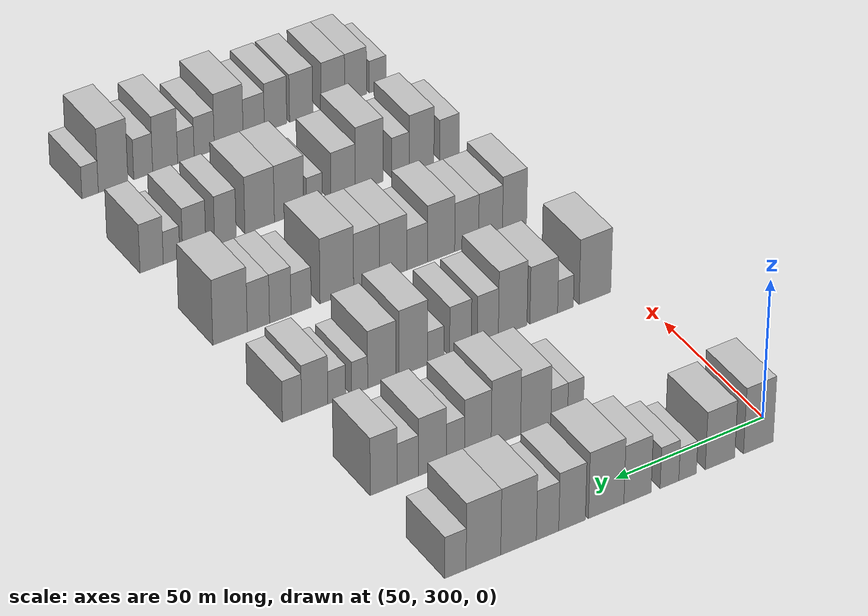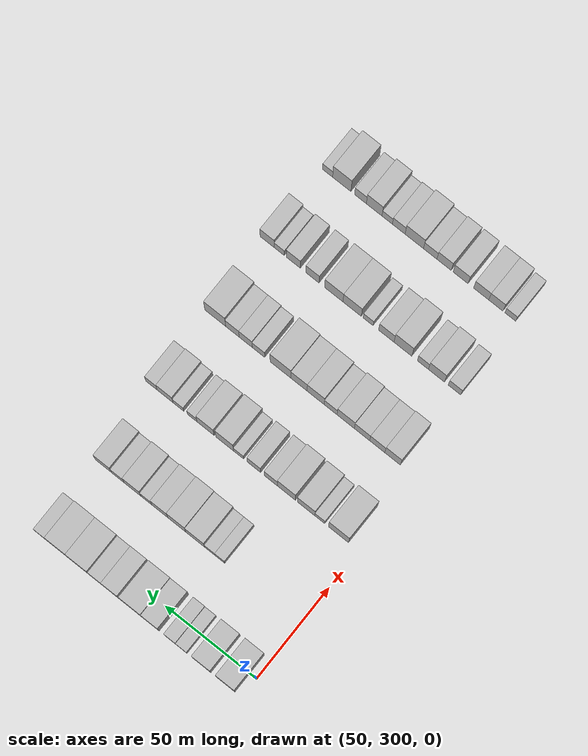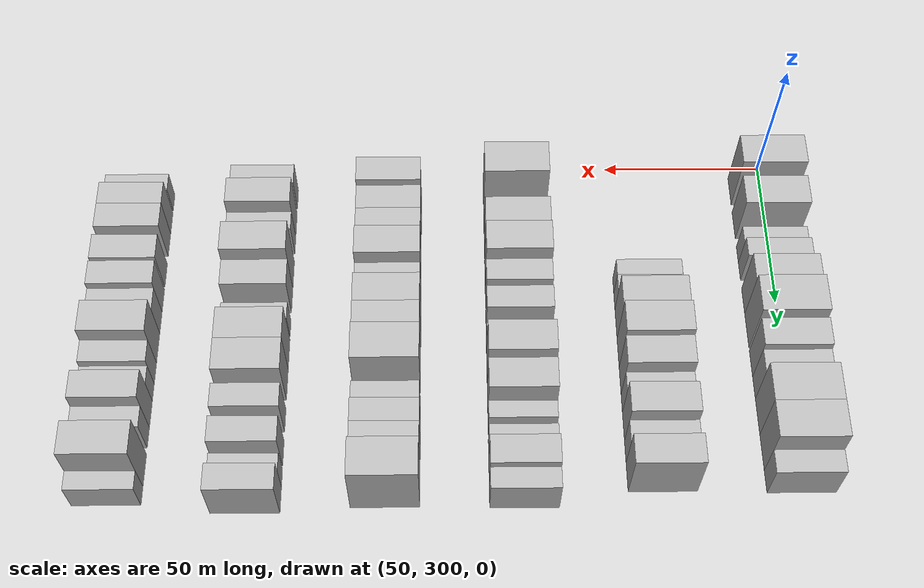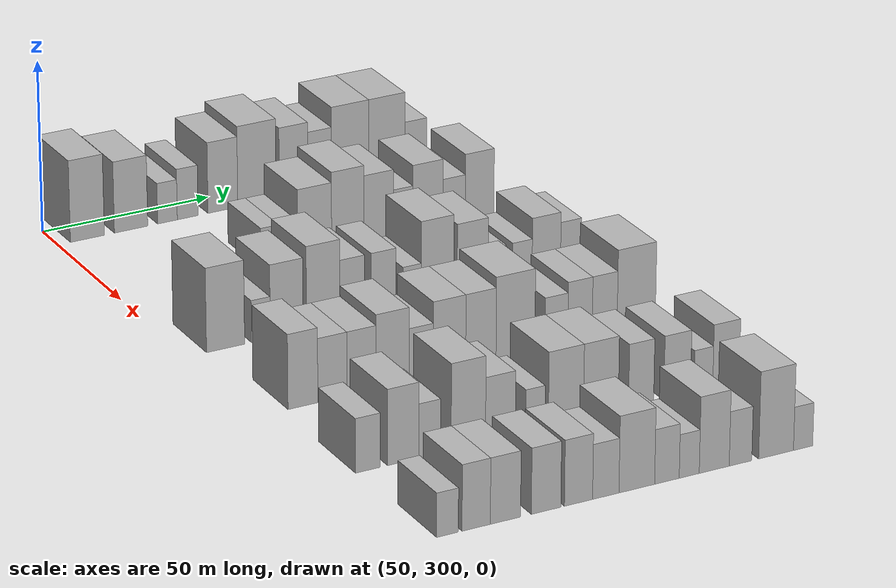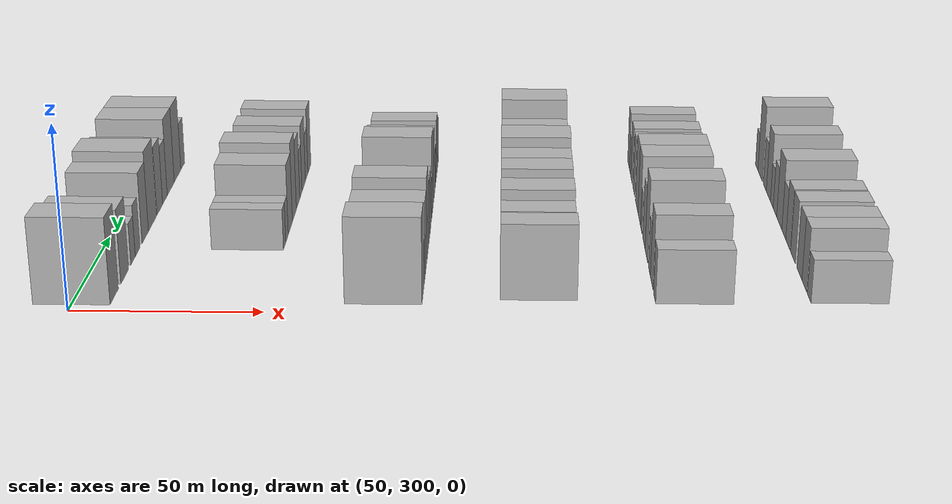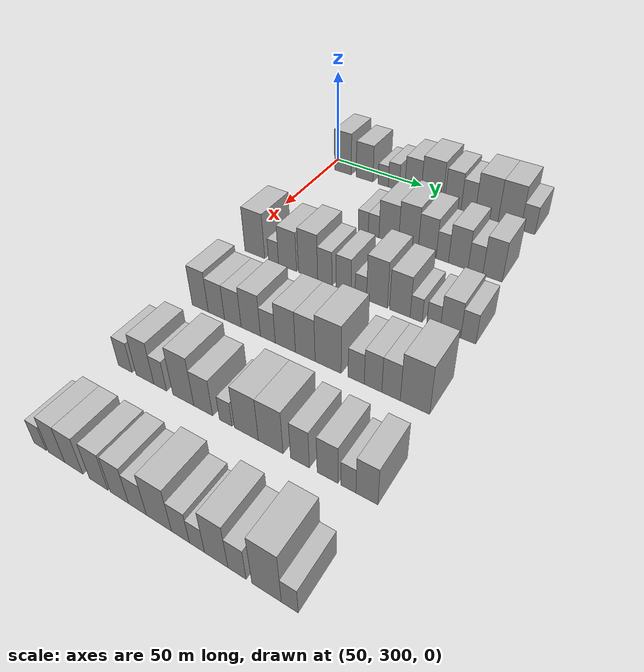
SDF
<sdf version="1.6">
 <world name="default">
  <model name="building_108">
   <static>1</static>
   <pose>50.0000 308.7284 0 0.000000 0.000000 0.000000</pose>
   <link name="link">
    <pose>0 0 12.00 0 0 0</pose>
    <collision name="collision"><geometry><box><size>20.0000 10.1392 24.0000</size></box></geometry></collision>
    <visual name="visual">
     <cast_shadows>0</cast_shadows>
     <geometry><box><size>20.0000 10.1392 24.0000</size></box></geometry>
     <material>
      <script>
       <uri>model://HANNAS_wall/materials/scripts</uri>
       <uri>model://HANNAS_wall/materials/textures</uri>
       <name>vrc/HANNAS_wall</name>
      </script>
     </material>
    </visual>
   </link>
  </model>
  <model name="building_109">
   <static>1</static>
   <pose>50.0000 321.8084 0 0.000000 0.000000 0.000000</pose>
   <link name="link">
    <pose>0 0 10.50 0 0 0</pose>
    <collision name="collision"><geometry><box><size>20.0000 10.0208 21.0000</size></box></geometry></collision>
    <visual name="visual">
     <cast_shadows>0</cast_shadows>
     <geometry><box><size>20.0000 10.0208 21.0000</size></box></geometry>
     <material>
      <script>
       <uri>model://HANNAS_wall/materials/scripts</uri>
       <uri>model://HANNAS_wall/materials/textures</uri>
       <name>vrc/HANNAS_wall</name>
      </script>
     </material>
    </visual>
   </link>
  </model>
  <model name="building_110">
   <static>1</static>
   <pose>50.0000 332.7910 0 0.000000 0.000000 0.000000</pose>
   <link name="link">
    <pose>0 0 6.00 0 0 0</pose>
    <collision name="collision"><geometry><box><size>20.0000 5.9444 12.0000</size></box></geometry></collision>
    <visual name="visual">
     <cast_shadows>0</cast_shadows>
     <geometry><box><size>20.0000 5.9444 12.0000</size></box></geometry>
     <material>
      <script>
       <uri>model://HANNAS_wall/materials/scripts</uri>
       <uri>model://HANNAS_wall/materials/textures</uri>
       <name>vrc/HANNAS_wall</name>
      </script>
     </material>
    </visual>
   </link>
  </model>
  <model name="building_111">
   <static>1</static>
   <pose>50.0000 338.9267 0 0.000000 0.000000 0.000000</pose>
   <link name="link">
    <pose>0 0 7.50 0 0 0</pose>
    <collision name="collision"><geometry><box><size>20.0000 6.3269 15.0000</size></box></geometry></collision>
    <visual name="visual">
     <cast_shadows>0</cast_shadows>
     <geometry><box><size>20.0000 6.3269 15.0000</size></box></geometry>
     <material>
      <script>
       <uri>model://HANNAS_wall/materials/scripts</uri>
       <uri>model://HANNAS_wall/materials/textures</uri>
       <name>vrc/HANNAS_wall</name>
      </script>
     </material>
    </visual>
   </link>
  </model>
  <model name="building_112">
   <static>1</static>
   <pose>50.0000 349.6469 0 0.000000 0.000000 0.000000</pose>
   <link name="link">
    <pose>0 0 10.50 0 0 0</pose>
    <collision name="collision"><geometry><box><size>20.0000 9.1135 21.0000</size></box></geometry></collision>
    <visual name="visual">
     <cast_shadows>0</cast_shadows>
     <geometry><box><size>20.0000 9.1135 21.0000</size></box></geometry>
     <material>
      <script>
       <uri>model://HANNAS_wall/materials/scripts</uri>
       <uri>model://HANNAS_wall/materials/textures</uri>
       <name>vrc/HANNAS_wall</name>
      </script>
     </material>
    </visual>
   </link>
  </model>
  <model name="building_113">
   <static>1</static>
   <pose>50.0000 360.1060 0 0.000000 0.000000 0.000000</pose>
   <link name="link">
    <pose>0 0 12.00 0 0 0</pose>
    <collision name="collision"><geometry><box><size>20.0000 11.8048 24.0000</size></box></geometry></collision>
    <visual name="visual">
     <cast_shadows>0</cast_shadows>
     <geometry><box><size>20.0000 11.8048 24.0000</size></box></geometry>
     <material>
      <script>
       <uri>model://HANNAS_wall/materials/scripts</uri>
       <uri>model://HANNAS_wall/materials/textures</uri>
       <name>vrc/HANNAS_wall</name>
      </script>
     </material>
    </visual>
   </link>
  </model>
  <model name="building_114">
   <static>1</static>
   <pose>50.0000 371.4158 0 0.000000 0.000000 0.000000</pose>
   <link name="link">
    <pose>0 0 10.50 0 0 0</pose>
    <collision name="collision"><geometry><box><size>20.0000 8.8148 21.0000</size></box></geometry></collision>
    <visual name="visual">
     <cast_shadows>0</cast_shadows>
     <geometry><box><size>20.0000 8.8148 21.0000</size></box></geometry>
     <material>
      <script>
       <uri>model://HANNAS_wall/materials/scripts</uri>
       <uri>model://HANNAS_wall/materials/textures</uri>
       <name>vrc/HANNAS_wall</name>
      </script>
     </material>
    </visual>
   </link>
  </model>
  <model name="building_115">
   <static>1</static>
   <pose>50.0000 379.5084 0 0.000000 0.000000 0.000000</pose>
   <link name="link">
    <pose>0 0 9.00 0 0 0</pose>
    <collision name="collision"><geometry><box><size>20.0000 7.3705 18.0000</size></box></geometry></collision>
    <visual name="visual">
     <cast_shadows>0</cast_shadows>
     <geometry><box><size>20.0000 7.3705 18.0000</size></box></geometry>
     <material>
      <script>
       <uri>model://HANNAS_wall/materials/scripts</uri>
       <uri>model://HANNAS_wall/materials/textures</uri>
       <name>vrc/HANNAS_wall</name>
      </script>
     </material>
    </visual>
   </link>
  </model>
  <model name="building_116">
   <static>1</static>
   <pose>50.0000 389.0170 0 0.000000 0.000000 0.000000</pose>
   <link name="link">
    <pose>0 0 12.00 0 0 0</pose>
    <collision name="collision"><geometry><box><size>20.0000 11.6468 24.0000</size></box></geometry></collision>
    <visual name="visual">
     <cast_shadows>0</cast_shadows>
     <geometry><box><size>20.0000 11.6468 24.0000</size></box></geometry>
     <material>
      <script>
       <uri>model://HANNAS_wall/materials/scripts</uri>
       <uri>model://HANNAS_wall/materials/textures</uri>
       <name>vrc/HANNAS_wall</name>
      </script>
     </material>
    </visual>
   </link>
  </model>
  <model name="building_117">
   <static>1</static>
   <pose>50.0000 400.4887 0 0.000000 0.000000 0.000000</pose>
   <link name="link">
    <pose>0 0 12.00 0 0 0</pose>
    <collision name="collision"><geometry><box><size>20.0000 11.2967 24.0000</size></box></geometry></collision>
    <visual name="visual">
     <cast_shadows>0</cast_shadows>
     <geometry><box><size>20.0000 11.2967 24.0000</size></box></geometry>
     <material>
      <script>
       <uri>model://HANNAS_wall/materials/scripts</uri>
       <uri>model://HANNAS_wall/materials/textures</uri>
       <name>vrc/HANNAS_wall</name>
      </script>
     </material>
    </visual>
   </link>
  </model>
  <model name="building_118">
   <static>1</static>
   <pose>50.0000 409.5889 0 0.000000 0.000000 0.000000</pose>
   <link name="link">
    <pose>0 0 7.50 0 0 0</pose>
    <collision name="collision"><geometry><box><size>20.0000 6.9036 15.0000</size></box></geometry></collision>
    <visual name="visual">
     <cast_shadows>0</cast_shadows>
     <geometry><box><size>20.0000 6.9036 15.0000</size></box></geometry>
     <material>
      <script>
       <uri>model://HANNAS_wall/materials/scripts</uri>
       <uri>model://HANNAS_wall/materials/textures</uri>
       <name>vrc/HANNAS_wall</name>
      </script>
     </material>
    </visual>
   </link>
  </model>
  <model name="building_248">
   <static>1</static>
   <pose>90.0000 344.0759 0 0.000000 0.000000 0.000000</pose>
   <link name="link">
    <pose>0 0 6.00 0 0 0</pose>
    <collision name="collision"><geometry><box><size>20.0000 5.3554 12.0000</size></box></geometry></collision>
    <visual name="visual">
     <cast_shadows>0</cast_shadows>
     <geometry><box><size>20.0000 5.3554 12.0000</size></box></geometry>
     <material>
      <script>
       <uri>model://HANNAS_wall/materials/scripts</uri>
       <uri>model://HANNAS_wall/materials/textures</uri>
       <name>vrc/HANNAS_wall</name>
      </script>
     </material>
    </visual>
   </link>
  </model>
  <model name="building_249">
   <static>1</static>
   <pose>90.0000 349.5880 0 0.000000 0.000000 0.000000</pose>
   <link name="link">
    <pose>0 0 6.00 0 0 0</pose>
    <collision name="collision"><geometry><box><size>20.0000 5.6689 12.0000</size></box></geometry></collision>
    <visual name="visual">
     <cast_shadows>0</cast_shadows>
     <geometry><box><size>20.0000 5.6689 12.0000</size></box></geometry>
     <material>
      <script>
       <uri>model://HANNAS_wall/materials/scripts</uri>
       <uri>model://HANNAS_wall/materials/textures</uri>
       <name>vrc/HANNAS_wall</name>
      </script>
     </material>
    </visual>
   </link>
  </model>
  <model name="building_250">
   <static>1</static>
   <pose>90.0000 357.5338 0 0.000000 0.000000 0.000000</pose>
   <link name="link">
    <pose>0 0 10.50 0 0 0</pose>
    <collision name="collision"><geometry><box><size>20.0000 10.2226 21.0000</size></box></geometry></collision>
    <visual name="visual">
     <cast_shadows>0</cast_shadows>
     <geometry><box><size>20.0000 10.2226 21.0000</size></box></geometry>
     <material>
      <script>
       <uri>model://HANNAS_wall/materials/scripts</uri>
       <uri>model://HANNAS_wall/materials/textures</uri>
       <name>vrc/HANNAS_wall</name>
      </script>
     </material>
    </visual>
   </link>
  </model>
  <model name="building_251">
   <static>1</static>
   <pose>90.0000 367.5804 0 0.000000 0.000000 0.000000</pose>
   <link name="link">
    <pose>0 0 12.00 0 0 0</pose>
    <collision name="collision"><geometry><box><size>20.0000 9.8704 24.0000</size></box></geometry></collision>
    <visual name="visual">
     <cast_shadows>0</cast_shadows>
     <geometry><box><size>20.0000 9.8704 24.0000</size></box></geometry>
     <material>
      <script>
       <uri>model://HANNAS_wall/materials/scripts</uri>
       <uri>model://HANNAS_wall/materials/textures</uri>
       <name>vrc/HANNAS_wall</name>
      </script>
     </material>
    </visual>
   </link>
  </model>
  <model name="building_252">
   <static>1</static>
   <pose>90.0000 376.9674 0 0.000000 0.000000 0.000000</pose>
   <link name="link">
    <pose>0 0 10.50 0 0 0</pose>
    <collision name="collision"><geometry><box><size>20.0000 8.9036 21.0000</size></box></geometry></collision>
    <visual name="visual">
     <cast_shadows>0</cast_shadows>
     <geometry><box><size>20.0000 8.9036 21.0000</size></box></geometry>
     <material>
      <script>
       <uri>model://HANNAS_wall/materials/scripts</uri>
       <uri>model://HANNAS_wall/materials/textures</uri>
       <name>vrc/HANNAS_wall</name>
      </script>
     </material>
    </visual>
   </link>
  </model>
  <model name="building_253">
   <static>1</static>
   <pose>90.0000 384.4218 0 0.000000 0.000000 0.000000</pose>
   <link name="link">
    <pose>0 0 7.50 0 0 0</pose>
    <collision name="collision"><geometry><box><size>20.0000 6.0051 15.0000</size></box></geometry></collision>
    <visual name="visual">
     <cast_shadows>0</cast_shadows>
     <geometry><box><size>20.0000 6.0051 15.0000</size></box></geometry>
     <material>
      <script>
       <uri>model://HANNAS_wall/materials/scripts</uri>
       <uri>model://HANNAS_wall/materials/textures</uri>
       <name>vrc/HANNAS_wall</name>
      </script>
     </material>
    </visual>
   </link>
  </model>
  <model name="building_254">
   <static>1</static>
   <pose>90.0000 392.0622 0 0.000000 0.000000 0.000000</pose>
   <link name="link">
    <pose>0 0 10.50 0 0 0</pose>
    <collision name="collision"><geometry><box><size>20.0000 9.2757 21.0000</size></box></geometry></collision>
    <visual name="visual">
     <cast_shadows>0</cast_shadows>
     <geometry><box><size>20.0000 9.2757 21.0000</size></box></geometry>
     <material>
      <script>
       <uri>model://HANNAS_wall/materials/scripts</uri>
       <uri>model://HANNAS_wall/materials/textures</uri>
       <name>vrc/HANNAS_wall</name>
      </script>
     </material>
    </visual>
   </link>
  </model>
  <model name="building_255">
   <static>1</static>
   <pose>90.0000 400.1419 0 0.000000 0.000000 0.000000</pose>
   <link name="link">
    <pose>0 0 7.50 0 0 0</pose>
    <collision name="collision"><geometry><box><size>20.0000 6.8838 15.0000</size></box></geometry></collision>
    <visual name="visual">
     <cast_shadows>0</cast_shadows>
     <geometry><box><size>20.0000 6.8838 15.0000</size></box></geometry>
     <material>
      <script>
       <uri>model://HANNAS_wall/materials/scripts</uri>
       <uri>model://HANNAS_wall/materials/textures</uri>
       <name>vrc/HANNAS_wall</name>
      </script>
     </material>
    </visual>
   </link>
  </model>
  <model name="building_256">
   <static>1</static>
   <pose>90.0000 408.0249 0 0.000000 0.000000 0.000000</pose>
   <link name="link">
    <pose>0 0 10.50 0 0 0</pose>
    <collision name="collision"><geometry><box><size>20.0000 8.8821 21.0000</size></box></geometry></collision>
    <visual name="visual">
     <cast_shadows>0</cast_shadows>
     <geometry><box><size>20.0000 8.8821 21.0000</size></box></geometry>
     <material>
      <script>
       <uri>model://HANNAS_wall/materials/scripts</uri>
       <uri>model://HANNAS_wall/materials/textures</uri>
       <name>vrc/HANNAS_wall</name>
      </script>
     </material>
    </visual>
   </link>
  </model>
  <model name="building_385">
   <static>1</static>
   <pose>130.0000 311.1266 0 0.000000 0.000000 0.000000</pose>
   <link name="link">
    <pose>0 0 12.00 0 0 0</pose>
    <collision name="collision"><geometry><box><size>20.0000 11.0346 24.0000</size></box></geometry></collision>
    <visual name="visual">
     <cast_shadows>0</cast_shadows>
     <geometry><box><size>20.0000 11.0346 24.0000</size></box></geometry>
     <material>
      <script>
       <uri>model://HANNAS_wall/materials/scripts</uri>
       <uri>model://HANNAS_wall/materials/textures</uri>
       <name>vrc/HANNAS_wall</name>
      </script>
     </material>
    </visual>
   </link>
  </model>
  <model name="building_386">
   <static>1</static>
   <pose>130.0000 321.3801 0 0.000000 0.000000 0.000000</pose>
   <link name="link">
    <pose>0 0 6.00 0 0 0</pose>
    <collision name="collision"><geometry><box><size>20.0000 5.4724 12.0000</size></box></geometry></collision>
    <visual name="visual">
     <cast_shadows>0</cast_shadows>
     <geometry><box><size>20.0000 5.4724 12.0000</size></box></geometry>
     <material>
      <script>
       <uri>model://HANNAS_wall/materials/scripts</uri>
       <uri>model://HANNAS_wall/materials/textures</uri>
       <name>vrc/HANNAS_wall</name>
      </script>
     </material>
    </visual>
   </link>
  </model>
  <model name="building_387">
   <static>1</static>
   <pose>130.0000 328.9147 0 0.000000 0.000000 0.000000</pose>
   <link name="link">
    <pose>0 0 10.50 0 0 0</pose>
    <collision name="collision"><geometry><box><size>20.0000 9.5968 21.0000</size></box></geometry></collision>
    <visual name="visual">
     <cast_shadows>0</cast_shadows>
     <geometry><box><size>20.0000 9.5968 21.0000</size></box></geometry>
     <material>
      <script>
       <uri>model://HANNAS_wall/materials/scripts</uri>
       <uri>model://HANNAS_wall/materials/textures</uri>
       <name>vrc/HANNAS_wall</name>
      </script>
     </material>
    </visual>
   </link>
  </model>
  <model name="building_388">
   <static>1</static>
   <pose>130.0000 339.6363 0 0.000000 0.000000 0.000000</pose>
   <link name="link">
    <pose>0 0 12.00 0 0 0</pose>
    <collision name="collision"><geometry><box><size>20.0000 9.8463 24.0000</size></box></geometry></collision>
    <visual name="visual">
     <cast_shadows>0</cast_shadows>
     <geometry><box><size>20.0000 9.8463 24.0000</size></box></geometry>
     <material>
      <script>
       <uri>model://HANNAS_wall/materials/scripts</uri>
       <uri>model://HANNAS_wall/materials/textures</uri>
       <name>vrc/HANNAS_wall</name>
      </script>
     </material>
    </visual>
   </link>
  </model>
  <model name="building_389">
   <static>1</static>
   <pose>130.0000 348.1880 0 0.000000 0.000000 0.000000</pose>
   <link name="link">
    <pose>0 0 9.00 0 0 0</pose>
    <collision name="collision"><geometry><box><size>20.0000 7.2570 18.0000</size></box></geometry></collision>
    <visual name="visual">
     <cast_shadows>0</cast_shadows>
     <geometry><box><size>20.0000 7.2570 18.0000</size></box></geometry>
     <material>
      <script>
       <uri>model://HANNAS_wall/materials/scripts</uri>
       <uri>model://HANNAS_wall/materials/textures</uri>
       <name>vrc/HANNAS_wall</name>
      </script>
     </material>
    </visual>
   </link>
  </model>
  <model name="building_390">
   <static>1</static>
   <pose>130.0000 357.5097 0 0.000000 0.000000 0.000000</pose>
   <link name="link">
    <pose>0 0 9.00 0 0 0</pose>
    <collision name="collision"><geometry><box><size>20.0000 7.3865 18.0000</size></box></geometry></collision>
    <visual name="visual">
     <cast_shadows>0</cast_shadows>
     <geometry><box><size>20.0000 7.3865 18.0000</size></box></geometry>
     <material>
      <script>
       <uri>model://HANNAS_wall/materials/scripts</uri>
       <uri>model://HANNAS_wall/materials/textures</uri>
       <name>vrc/HANNAS_wall</name>
      </script>
     </material>
    </visual>
   </link>
  </model>
  <model name="building_391">
   <static>1</static>
   <pose>130.0000 365.9341 0 0.000000 0.000000 0.000000</pose>
   <link name="link">
    <pose>0 0 6.00 0 0 0</pose>
    <collision name="collision"><geometry><box><size>20.0000 5.4623 12.0000</size></box></geometry></collision>
    <visual name="visual">
     <cast_shadows>0</cast_shadows>
     <geometry><box><size>20.0000 5.4623 12.0000</size></box></geometry>
     <material>
      <script>
       <uri>model://HANNAS_wall/materials/scripts</uri>
       <uri>model://HANNAS_wall/materials/textures</uri>
       <name>vrc/HANNAS_wall</name>
      </script>
     </material>
    </visual>
   </link>
  </model>
  <model name="building_392">
   <static>1</static>
   <pose>130.0000 373.5541 0 0.000000 0.000000 0.000000</pose>
   <link name="link">
    <pose>0 0 12.00 0 0 0</pose>
    <collision name="collision"><geometry><box><size>20.0000 9.7776 24.0000</size></box></geometry></collision>
    <visual name="visual">
     <cast_shadows>0</cast_shadows>
     <geometry><box><size>20.0000 9.7776 24.0000</size></box></geometry>
     <material>
      <script>
       <uri>model://HANNAS_wall/materials/scripts</uri>
       <uri>model://HANNAS_wall/materials/textures</uri>
       <name>vrc/HANNAS_wall</name>
      </script>
     </material>
    </visual>
   </link>
  </model>
  <model name="building_393">
   <static>1</static>
   <pose>130.0000 384.1464 0 0.000000 0.000000 0.000000</pose>
   <link name="link">
    <pose>0 0 10.50 0 0 0</pose>
    <collision name="collision"><geometry><box><size>20.0000 9.4071 21.0000</size></box></geometry></collision>
    <visual name="visual">
     <cast_shadows>0</cast_shadows>
     <geometry><box><size>20.0000 9.4071 21.0000</size></box></geometry>
     <material>
      <script>
       <uri>model://HANNAS_wall/materials/scripts</uri>
       <uri>model://HANNAS_wall/materials/textures</uri>
       <name>vrc/HANNAS_wall</name>
      </script>
     </material>
    </visual>
   </link>
  </model>
  <model name="building_394">
   <static>1</static>
   <pose>130.0000 391.5254 0 0.000000 0.000000 0.000000</pose>
   <link name="link">
    <pose>0 0 6.00 0 0 0</pose>
    <collision name="collision"><geometry><box><size>20.0000 5.3509 12.0000</size></box></geometry></collision>
    <visual name="visual">
     <cast_shadows>0</cast_shadows>
     <geometry><box><size>20.0000 5.3509 12.0000</size></box></geometry>
     <material>
      <script>
       <uri>model://HANNAS_wall/materials/scripts</uri>
       <uri>model://HANNAS_wall/materials/textures</uri>
       <name>vrc/HANNAS_wall</name>
      </script>
     </material>
    </visual>
   </link>
  </model>
  <model name="building_395">
   <static>1</static>
   <pose>130.0000 399.1690 0 0.000000 0.000000 0.000000</pose>
   <link name="link">
    <pose>0 0 6.00 0 0 0</pose>
    <collision name="collision"><geometry><box><size>20.0000 5.9361 12.0000</size></box></geometry></collision>
    <visual name="visual">
     <cast_shadows>0</cast_shadows>
     <geometry><box><size>20.0000 5.9361 12.0000</size></box></geometry>
     <material>
      <script>
       <uri>model://HANNAS_wall/materials/scripts</uri>
       <uri>model://HANNAS_wall/materials/textures</uri>
       <name>vrc/HANNAS_wall</name>
      </script>
     </material>
    </visual>
   </link>
  </model>
  <model name="building_396">
   <static>1</static>
   <pose>130.0000 406.4799 0 0.000000 0.000000 0.000000</pose>
   <link name="link">
    <pose>0 0 9.00 0 0 0</pose>
    <collision name="collision"><geometry><box><size>20.0000 8.6857 18.0000</size></box></geometry></collision>
    <visual name="visual">
     <cast_shadows>0</cast_shadows>
     <geometry><box><size>20.0000 8.6857 18.0000</size></box></geometry>
     <material>
      <script>
       <uri>model://HANNAS_wall/materials/scripts</uri>
       <uri>model://HANNAS_wall/materials/textures</uri>
       <name>vrc/HANNAS_wall</name>
      </script>
     </material>
    </visual>
   </link>
  </model>
  <model name="building_397">
   <static>1</static>
   <pose>130.0000 413.9989 0 0.000000 0.000000 0.000000</pose>
   <link name="link">
    <pose>0 0 7.50 0 0 0</pose>
    <collision name="collision"><geometry><box><size>20.0000 6.3524 15.0000</size></box></geometry></collision>
    <visual name="visual">
     <cast_shadows>0</cast_shadows>
     <geometry><box><size>20.0000 6.3524 15.0000</size></box></geometry>
     <material>
      <script>
       <uri>model://HANNAS_wall/materials/scripts</uri>
       <uri>model://HANNAS_wall/materials/textures</uri>
       <name>vrc/HANNAS_wall</name>
      </script>
     </material>
    </visual>
   </link>
  </model>
  <model name="building_527">
   <static>1</static>
   <pose>170.0000 313.3306 0 0.000000 0.000000 0.000000</pose>
   <link name="link">
    <pose>0 0 10.50 0 0 0</pose>
    <collision name="collision"><geometry><box><size>20.0000 8.5055 21.0000</size></box></geometry></collision>
    <visual name="visual">
     <cast_shadows>0</cast_shadows>
     <geometry><box><size>20.0000 8.5055 21.0000</size></box></geometry>
     <material>
      <script>
       <uri>model://HANNAS_wall/materials/scripts</uri>
       <uri>model://HANNAS_wall/materials/textures</uri>
       <name>vrc/HANNAS_wall</name>
      </script>
     </material>
    </visual>
   </link>
  </model>
  <model name="building_528">
   <static>1</static>
   <pose>170.0000 321.7603 0 0.000000 0.000000 0.000000</pose>
   <link name="link">
    <pose>0 0 9.00 0 0 0</pose>
    <collision name="collision"><geometry><box><size>20.0000 8.3539 18.0000</size></box></geometry></collision>
    <visual name="visual">
     <cast_shadows>0</cast_shadows>
     <geometry><box><size>20.0000 8.3539 18.0000</size></box></geometry>
     <material>
      <script>
       <uri>model://HANNAS_wall/materials/scripts</uri>
       <uri>model://HANNAS_wall/materials/textures</uri>
       <name>vrc/HANNAS_wall</name>
      </script>
     </material>
    </visual>
   </link>
  </model>
  <model name="building_529">
   <static>1</static>
   <pose>170.0000 330.1282 0 0.000000 0.000000 0.000000</pose>
   <link name="link">
    <pose>0 0 9.00 0 0 0</pose>
    <collision name="collision"><geometry><box><size>20.0000 8.3821 18.0000</size></box></geometry></collision>
    <visual name="visual">
     <cast_shadows>0</cast_shadows>
     <geometry><box><size>20.0000 8.3821 18.0000</size></box></geometry>
     <material>
      <script>
       <uri>model://HANNAS_wall/materials/scripts</uri>
       <uri>model://HANNAS_wall/materials/textures</uri>
       <name>vrc/HANNAS_wall</name>
      </script>
     </material>
    </visual>
   </link>
  </model>
  <model name="building_530">
   <static>1</static>
   <pose>170.0000 339.0592 0 0.000000 0.000000 0.000000</pose>
   <link name="link">
    <pose>0 0 10.50 0 0 0</pose>
    <collision name="collision"><geometry><box><size>20.0000 9.4798 21.0000</size></box></geometry></collision>
    <visual name="visual">
     <cast_shadows>0</cast_shadows>
     <geometry><box><size>20.0000 9.4798 21.0000</size></box></geometry>
     <material>
      <script>
       <uri>model://HANNAS_wall/materials/scripts</uri>
       <uri>model://HANNAS_wall/materials/textures</uri>
       <name>vrc/HANNAS_wall</name>
      </script>
     </material>
    </visual>
   </link>
  </model>
  <model name="building_531">
   <static>1</static>
   <pose>170.0000 347.3493 0 0.000000 0.000000 0.000000</pose>
   <link name="link">
    <pose>0 0 7.50 0 0 0</pose>
    <collision name="collision"><geometry><box><size>20.0000 7.1004 15.0000</size></box></geometry></collision>
    <visual name="visual">
     <cast_shadows>0</cast_shadows>
     <geometry><box><size>20.0000 7.1004 15.0000</size></box></geometry>
     <material>
      <script>
       <uri>model://HANNAS_wall/materials/scripts</uri>
       <uri>model://HANNAS_wall/materials/textures</uri>
       <name>vrc/HANNAS_wall</name>
      </script>
     </material>
    </visual>
   </link>
  </model>
  <model name="building_532">
   <static>1</static>
   <pose>170.0000 355.6091 0 0.000000 0.000000 0.000000</pose>
   <link name="link">
    <pose>0 0 10.50 0 0 0</pose>
    <collision name="collision"><geometry><box><size>20.0000 9.4192 21.0000</size></box></geometry></collision>
    <visual name="visual">
     <cast_shadows>0</cast_shadows>
     <geometry><box><size>20.0000 9.4192 21.0000</size></box></geometry>
     <material>
      <script>
       <uri>model://HANNAS_wall/materials/scripts</uri>
       <uri>model://HANNAS_wall/materials/textures</uri>
       <name>vrc/HANNAS_wall</name>
      </script>
     </material>
    </visual>
   </link>
  </model>
  <model name="building_533">
   <static>1</static>
   <pose>170.0000 364.7740 0 0.000000 0.000000 0.000000</pose>
   <link name="link">
    <pose>0 0 10.50 0 0 0</pose>
    <collision name="collision"><geometry><box><size>20.0000 8.9105 21.0000</size></box></geometry></collision>
    <visual name="visual">
     <cast_shadows>0</cast_shadows>
     <geometry><box><size>20.0000 8.9105 21.0000</size></box></geometry>
     <material>
      <script>
       <uri>model://HANNAS_wall/materials/scripts</uri>
       <uri>model://HANNAS_wall/materials/textures</uri>
       <name>vrc/HANNAS_wall</name>
      </script>
     </material>
    </visual>
   </link>
  </model>
  <model name="building_534">
   <static>1</static>
   <pose>170.0000 374.9567 0 0.000000 0.000000 0.000000</pose>
   <link name="link">
    <pose>0 0 12.00 0 0 0</pose>
    <collision name="collision"><geometry><box><size>20.0000 11.4548 24.0000</size></box></geometry></collision>
    <visual name="visual">
     <cast_shadows>0</cast_shadows>
     <geometry><box><size>20.0000 11.4548 24.0000</size></box></geometry>
     <material>
      <script>
       <uri>model://HANNAS_wall/materials/scripts</uri>
       <uri>model://HANNAS_wall/materials/textures</uri>
       <name>vrc/HANNAS_wall</name>
      </script>
     </material>
    </visual>
   </link>
  </model>
  <model name="building_535">
   <static>1</static>
   <pose>170.0000 387.1000 0 0.000000 0.000000 0.000000</pose>
   <link name="link">
    <pose>0 0 7.50 0 0 0</pose>
    <collision name="collision"><geometry><box><size>20.0000 6.8320 15.0000</size></box></geometry></collision>
    <visual name="visual">
     <cast_shadows>0</cast_shadows>
     <geometry><box><size>20.0000 6.8320 15.0000</size></box></geometry>
     <material>
      <script>
       <uri>model://HANNAS_wall/materials/scripts</uri>
       <uri>model://HANNAS_wall/materials/textures</uri>
       <name>vrc/HANNAS_wall</name>
      </script>
     </material>
    </visual>
   </link>
  </model>
  <model name="building_536">
   <static>1</static>
   <pose>170.0000 394.1450 0 0.000000 0.000000 0.000000</pose>
   <link name="link">
    <pose>0 0 9.00 0 0 0</pose>
    <collision name="collision"><geometry><box><size>20.0000 7.2580 18.0000</size></box></geometry></collision>
    <visual name="visual">
     <cast_shadows>0</cast_shadows>
     <geometry><box><size>20.0000 7.2580 18.0000</size></box></geometry>
     <material>
      <script>
       <uri>model://HANNAS_wall/materials/scripts</uri>
       <uri>model://HANNAS_wall/materials/textures</uri>
       <name>vrc/HANNAS_wall</name>
      </script>
     </material>
    </visual>
   </link>
  </model>
  <model name="building_537">
   <static>1</static>
   <pose>170.0000 401.5126 0 0.000000 0.000000 0.000000</pose>
   <link name="link">
    <pose>0 0 9.00 0 0 0</pose>
    <collision name="collision"><geometry><box><size>20.0000 7.4772 18.0000</size></box></geometry></collision>
    <visual name="visual">
     <cast_shadows>0</cast_shadows>
     <geometry><box><size>20.0000 7.4772 18.0000</size></box></geometry>
     <material>
      <script>
       <uri>model://HANNAS_wall/materials/scripts</uri>
       <uri>model://HANNAS_wall/materials/textures</uri>
       <name>vrc/HANNAS_wall</name>
      </script>
     </material>
    </visual>
   </link>
  </model>
  <model name="building_538">
   <static>1</static>
   <pose>170.0000 411.0174 0 0.000000 0.000000 0.000000</pose>
   <link name="link">
    <pose>0 0 12.00 0 0 0</pose>
    <collision name="collision"><geometry><box><size>20.0000 11.5324 24.0000</size></box></geometry></collision>
    <visual name="visual">
     <cast_shadows>0</cast_shadows>
     <geometry><box><size>20.0000 11.5324 24.0000</size></box></geometry>
     <material>
      <script>
       <uri>model://HANNAS_wall/materials/scripts</uri>
       <uri>model://HANNAS_wall/materials/textures</uri>
       <name>vrc/HANNAS_wall</name>
      </script>
     </material>
    </visual>
   </link>
  </model>
  <model name="building_664">
   <static>1</static>
   <pose>210.0000 311.0756 0 0.000000 0.000000 0.000000</pose>
   <link name="link">
    <pose>0 0 7.50 0 0 0</pose>
    <collision name="collision"><geometry><box><size>20.0000 6.9626 15.0000</size></box></geometry></collision>
    <visual name="visual">
     <cast_shadows>0</cast_shadows>
     <geometry><box><size>20.0000 6.9626 15.0000</size></box></geometry>
     <material>
      <script>
       <uri>model://HANNAS_wall/materials/scripts</uri>
       <uri>model://HANNAS_wall/materials/textures</uri>
       <name>vrc/HANNAS_wall</name>
      </script>
     </material>
    </visual>
   </link>
  </model>
  <model name="building_665">
   <static>1</static>
   <pose>210.0000 320.9581 0 0.000000 0.000000 0.000000</pose>
   <link name="link">
    <pose>0 0 10.50 0 0 0</pose>
    <collision name="collision"><geometry><box><size>20.0000 8.8024 21.0000</size></box></geometry></collision>
    <visual name="visual">
     <cast_shadows>0</cast_shadows>
     <geometry><box><size>20.0000 8.8024 21.0000</size></box></geometry>
     <material>
      <script>
       <uri>model://HANNAS_wall/materials/scripts</uri>
       <uri>model://HANNAS_wall/materials/textures</uri>
       <name>vrc/HANNAS_wall</name>
      </script>
     </material>
    </visual>
   </link>
  </model>
  <model name="building_666">
   <static>1</static>
   <pose>210.0000 328.4327 0 0.000000 0.000000 0.000000</pose>
   <link name="link">
    <pose>0 0 7.50 0 0 0</pose>
    <collision name="collision"><geometry><box><size>20.0000 6.1467 15.0000</size></box></geometry></collision>
    <visual name="visual">
     <cast_shadows>0</cast_shadows>
     <geometry><box><size>20.0000 6.1467 15.0000</size></box></geometry>
     <material>
      <script>
       <uri>model://HANNAS_wall/materials/scripts</uri>
       <uri>model://HANNAS_wall/materials/textures</uri>
       <name>vrc/HANNAS_wall</name>
      </script>
     </material>
    </visual>
   </link>
  </model>
  <model name="building_667">
   <static>1</static>
   <pose>210.0000 339.3968 0 0.000000 0.000000 0.000000</pose>
   <link name="link">
    <pose>0 0 12.00 0 0 0</pose>
    <collision name="collision"><geometry><box><size>20.0000 9.7814 24.0000</size></box></geometry></collision>
    <visual name="visual">
     <cast_shadows>0</cast_shadows>
     <geometry><box><size>20.0000 9.7814 24.0000</size></box></geometry>
     <material>
      <script>
       <uri>model://HANNAS_wall/materials/scripts</uri>
       <uri>model://HANNAS_wall/materials/textures</uri>
       <name>vrc/HANNAS_wall</name>
      </script>
     </material>
    </visual>
   </link>
  </model>
  <model name="building_668">
   <static>1</static>
   <pose>210.0000 348.5457 0 0.000000 0.000000 0.000000</pose>
   <link name="link">
    <pose>0 0 9.00 0 0 0</pose>
    <collision name="collision"><geometry><box><size>20.0000 8.5164 18.0000</size></box></geometry></collision>
    <visual name="visual">
     <cast_shadows>0</cast_shadows>
     <geometry><box><size>20.0000 8.5164 18.0000</size></box></geometry>
     <material>
      <script>
       <uri>model://HANNAS_wall/materials/scripts</uri>
       <uri>model://HANNAS_wall/materials/textures</uri>
       <name>vrc/HANNAS_wall</name>
      </script>
     </material>
    </visual>
   </link>
  </model>
  <model name="building_669">
   <static>1</static>
   <pose>210.0000 358.5534 0 0.000000 0.000000 0.000000</pose>
   <link name="link">
    <pose>0 0 6.00 0 0 0</pose>
    <collision name="collision"><geometry><box><size>20.0000 5.4992 12.0000</size></box></geometry></collision>
    <visual name="visual">
     <cast_shadows>0</cast_shadows>
     <geometry><box><size>20.0000 5.4992 12.0000</size></box></geometry>
     <material>
      <script>
       <uri>model://HANNAS_wall/materials/scripts</uri>
       <uri>model://HANNAS_wall/materials/textures</uri>
       <name>vrc/HANNAS_wall</name>
      </script>
     </material>
    </visual>
   </link>
  </model>
  <model name="building_670">
   <static>1</static>
   <pose>210.0000 367.3845 0 0.000000 0.000000 0.000000</pose>
   <link name="link">
    <pose>0 0 10.50 0 0 0</pose>
    <collision name="collision"><geometry><box><size>20.0000 10.1629 21.0000</size></box></geometry></collision>
    <visual name="visual">
     <cast_shadows>0</cast_shadows>
     <geometry><box><size>20.0000 10.1629 21.0000</size></box></geometry>
     <material>
      <script>
       <uri>model://HANNAS_wall/materials/scripts</uri>
       <uri>model://HANNAS_wall/materials/textures</uri>
       <name>vrc/HANNAS_wall</name>
      </script>
     </material>
    </visual>
   </link>
  </model>
  <model name="building_671">
   <static>1</static>
   <pose>210.0000 377.5382 0 0.000000 0.000000 0.000000</pose>
   <link name="link">
    <pose>0 0 10.50 0 0 0</pose>
    <collision name="collision"><geometry><box><size>20.0000 10.1445 21.0000</size></box></geometry></collision>
    <visual name="visual">
     <cast_shadows>0</cast_shadows>
     <geometry><box><size>20.0000 10.1445 21.0000</size></box></geometry>
     <material>
      <script>
       <uri>model://HANNAS_wall/materials/scripts</uri>
       <uri>model://HANNAS_wall/materials/textures</uri>
       <name>vrc/HANNAS_wall</name>
      </script>
     </material>
    </visual>
   </link>
  </model>
  <model name="building_672">
   <static>1</static>
   <pose>210.0000 389.2951 0 0.000000 0.000000 0.000000</pose>
   <link name="link">
    <pose>0 0 9.00 0 0 0</pose>
    <collision name="collision"><geometry><box><size>20.0000 7.3693 18.0000</size></box></geometry></collision>
    <visual name="visual">
     <cast_shadows>0</cast_shadows>
     <geometry><box><size>20.0000 7.3693 18.0000</size></box></geometry>
     <material>
      <script>
       <uri>model://HANNAS_wall/materials/scripts</uri>
       <uri>model://HANNAS_wall/materials/textures</uri>
       <name>vrc/HANNAS_wall</name>
      </script>
     </material>
    </visual>
   </link>
  </model>
  <model name="building_673">
   <static>1</static>
   <pose>210.0000 399.9118 0 0.000000 0.000000 0.000000</pose>
   <link name="link">
    <pose>0 0 9.00 0 0 0</pose>
    <collision name="collision"><geometry><box><size>20.0000 7.8640 18.0000</size></box></geometry></collision>
    <visual name="visual">
     <cast_shadows>0</cast_shadows>
     <geometry><box><size>20.0000 7.8640 18.0000</size></box></geometry>
     <material>
      <script>
       <uri>model://HANNAS_wall/materials/scripts</uri>
       <uri>model://HANNAS_wall/materials/textures</uri>
       <name>vrc/HANNAS_wall</name>
      </script>
     </material>
    </visual>
   </link>
  </model>
  <model name="building_674">
   <static>1</static>
   <pose>210.0000 407.6446 0 0.000000 0.000000 0.000000</pose>
   <link name="link">
    <pose>0 0 6.00 0 0 0</pose>
    <collision name="collision"><geometry><box><size>20.0000 5.6017 12.0000</size></box></geometry></collision>
    <visual name="visual">
     <cast_shadows>0</cast_shadows>
     <geometry><box><size>20.0000 5.6017 12.0000</size></box></geometry>
     <material>
      <script>
       <uri>model://HANNAS_wall/materials/scripts</uri>
       <uri>model://HANNAS_wall/materials/textures</uri>
       <name>vrc/HANNAS_wall</name>
      </script>
     </material>
    </visual>
   </link>
  </model>
  <model name="building_675">
   <static>1</static>
   <pose>210.0000 414.3821 0 0.000000 0.000000 0.000000</pose>
   <link name="link">
    <pose>0 0 9.00 0 0 0</pose>
    <collision name="collision"><geometry><box><size>20.0000 7.8733 18.0000</size></box></geometry></collision>
    <visual name="visual">
     <cast_shadows>0</cast_shadows>
     <geometry><box><size>20.0000 7.8733 18.0000</size></box></geometry>
     <material>
      <script>
       <uri>model://HANNAS_wall/materials/scripts</uri>
       <uri>model://HANNAS_wall/materials/textures</uri>
       <name>vrc/HANNAS_wall</name>
      </script>
     </material>
    </visual>
   </link>
  </model>
  <model name="building_808">
   <static>1</static>
   <pose>250.0000 311.9544 0 0.000000 0.000000 0.000000</pose>
   <link name="link">
    <pose>0 0 6.00 0 0 0</pose>
    <collision name="collision"><geometry><box><size>20.0000 5.9849 12.0000</size></box></geometry></collision>
    <visual name="visual">
     <cast_shadows>0</cast_shadows>
     <geometry><box><size>20.0000 5.9849 12.0000</size></box></geometry>
     <material>
      <script>
       <uri>model://HANNAS_wall/materials/scripts</uri>
       <uri>model://HANNAS_wall/materials/textures</uri>
       <name>vrc/HANNAS_wall</name>
      </script>
     </material>
    </visual>
   </link>
  </model>
  <model name="building_809">
   <static>1</static>
   <pose>250.0000 319.8582 0 0.000000 0.000000 0.000000</pose>
   <link name="link">
    <pose>0 0 9.00 0 0 0</pose>
    <collision name="collision"><geometry><box><size>20.0000 7.8227 18.0000</size></box></geometry></collision>
    <visual name="visual">
     <cast_shadows>0</cast_shadows>
     <geometry><box><size>20.0000 7.8227 18.0000</size></box></geometry>
     <material>
      <script>
       <uri>model://HANNAS_wall/materials/scripts</uri>
       <uri>model://HANNAS_wall/materials/textures</uri>
       <name>vrc/HANNAS_wall</name>
      </script>
     </material>
    </visual>
   </link>
  </model>
  <model name="building_810">
   <static>1</static>
   <pose>250.0000 327.9650 0 0.000000 0.000000 0.000000</pose>
   <link name="link">
    <pose>0 0 9.00 0 0 0</pose>
    <collision name="collision"><geometry><box><size>20.0000 8.3908 18.0000</size></box></geometry></collision>
    <visual name="visual">
     <cast_shadows>0</cast_shadows>
     <geometry><box><size>20.0000 8.3908 18.0000</size></box></geometry>
     <material>
      <script>
       <uri>model://HANNAS_wall/materials/scripts</uri>
       <uri>model://HANNAS_wall/materials/textures</uri>
       <name>vrc/HANNAS_wall</name>
      </script>
     </material>
    </visual>
   </link>
  </model>
  <model name="building_811">
   <static>1</static>
   <pose>250.0000 339.2861 0 0.000000 0.000000 0.000000</pose>
   <link name="link">
    <pose>0 0 9.00 0 0 0</pose>
    <collision name="collision"><geometry><box><size>20.0000 8.2515 18.0000</size></box></geometry></collision>
    <visual name="visual">
     <cast_shadows>0</cast_shadows>
     <geometry><box><size>20.0000 8.2515 18.0000</size></box></geometry>
     <material>
      <script>
       <uri>model://HANNAS_wall/materials/scripts</uri>
       <uri>model://HANNAS_wall/materials/textures</uri>
       <name>vrc/HANNAS_wall</name>
      </script>
     </material>
    </visual>
   </link>
  </model>
  <model name="building_812">
   <static>1</static>
   <pose>250.0000 348.3764 0 0.000000 0.000000 0.000000</pose>
   <link name="link">
    <pose>0 0 9.00 0 0 0</pose>
    <collision name="collision"><geometry><box><size>20.0000 7.9290 18.0000</size></box></geometry></collision>
    <visual name="visual">
     <cast_shadows>0</cast_shadows>
     <geometry><box><size>20.0000 7.9290 18.0000</size></box></geometry>
     <material>
      <script>
       <uri>model://HANNAS_wall/materials/scripts</uri>
       <uri>model://HANNAS_wall/materials/textures</uri>
       <name>vrc/HANNAS_wall</name>
      </script>
     </material>
    </visual>
   </link>
  </model>
  <model name="building_813">
   <static>1</static>
   <pose>250.0000 356.0654 0 0.000000 0.000000 0.000000</pose>
   <link name="link">
    <pose>0 0 7.50 0 0 0</pose>
    <collision name="collision"><geometry><box><size>20.0000 7.4491 15.0000</size></box></geometry></collision>
    <visual name="visual">
     <cast_shadows>0</cast_shadows>
     <geometry><box><size>20.0000 7.4491 15.0000</size></box></geometry>
     <material>
      <script>
       <uri>model://HANNAS_wall/materials/scripts</uri>
       <uri>model://HANNAS_wall/materials/textures</uri>
       <name>vrc/HANNAS_wall</name>
      </script>
     </material>
    </visual>
   </link>
  </model>
  <model name="building_814">
   <static>1</static>
   <pose>250.0000 364.8598 0 0.000000 0.000000 0.000000</pose>
   <link name="link">
    <pose>0 0 10.50 0 0 0</pose>
    <collision name="collision"><geometry><box><size>20.0000 10.1396 21.0000</size></box></geometry></collision>
    <visual name="visual">
     <cast_shadows>0</cast_shadows>
     <geometry><box><size>20.0000 10.1396 21.0000</size></box></geometry>
     <material>
      <script>
       <uri>model://HANNAS_wall/materials/scripts</uri>
       <uri>model://HANNAS_wall/materials/textures</uri>
       <name>vrc/HANNAS_wall</name>
      </script>
     </material>
    </visual>
   </link>
  </model>
  <model name="building_815">
   <static>1</static>
   <pose>250.0000 373.4462 0 0.000000 0.000000 0.000000</pose>
   <link name="link">
    <pose>0 0 7.50 0 0 0</pose>
    <collision name="collision"><geometry><box><size>20.0000 7.0333 15.0000</size></box></geometry></collision>
    <visual name="visual">
     <cast_shadows>0</cast_shadows>
     <geometry><box><size>20.0000 7.0333 15.0000</size></box></geometry>
     <material>
      <script>
       <uri>model://HANNAS_wall/materials/scripts</uri>
       <uri>model://HANNAS_wall/materials/textures</uri>
       <name>vrc/HANNAS_wall</name>
      </script>
     </material>
    </visual>
   </link>
  </model>
  <model name="building_816">
   <static>1</static>
   <pose>250.0000 379.8360 0 0.000000 0.000000 0.000000</pose>
   <link name="link">
    <pose>0 0 6.00 0 0 0</pose>
    <collision name="collision"><geometry><box><size>20.0000 5.7462 12.0000</size></box></geometry></collision>
    <visual name="visual">
     <cast_shadows>0</cast_shadows>
     <geometry><box><size>20.0000 5.7462 12.0000</size></box></geometry>
     <material>
      <script>
       <uri>model://HANNAS_wall/materials/scripts</uri>
       <uri>model://HANNAS_wall/materials/textures</uri>
       <name>vrc/HANNAS_wall</name>
      </script>
     </material>
    </visual>
   </link>
  </model>
  <model name="building_817">
   <static>1</static>
   <pose>250.0000 387.0303 0 0.000000 0.000000 0.000000</pose>
   <link name="link">
    <pose>0 0 10.50 0 0 0</pose>
    <collision name="collision"><geometry><box><size>20.0000 8.6425 21.0000</size></box></geometry></collision>
    <visual name="visual">
     <cast_shadows>0</cast_shadows>
     <geometry><box><size>20.0000 8.6425 21.0000</size></box></geometry>
     <material>
      <script>
       <uri>model://HANNAS_wall/materials/scripts</uri>
       <uri>model://HANNAS_wall/materials/textures</uri>
       <name>vrc/HANNAS_wall</name>
      </script>
     </material>
    </visual>
   </link>
  </model>
  <model name="building_818">
   <static>1</static>
   <pose>250.0000 394.6177 0 0.000000 0.000000 0.000000</pose>
   <link name="link">
    <pose>0 0 7.50 0 0 0</pose>
    <collision name="collision"><geometry><box><size>20.0000 6.5322 15.0000</size></box></geometry></collision>
    <visual name="visual">
     <cast_shadows>0</cast_shadows>
     <geometry><box><size>20.0000 6.5322 15.0000</size></box></geometry>
     <material>
      <script>
       <uri>model://HANNAS_wall/materials/scripts</uri>
       <uri>model://HANNAS_wall/materials/textures</uri>
       <name>vrc/HANNAS_wall</name>
      </script>
     </material>
    </visual>
   </link>
  </model>
  <model name="building_819">
   <static>1</static>
   <pose>250.0000 404.9616 0 0.000000 0.000000 0.000000</pose>
   <link name="link">
    <pose>0 0 12.00 0 0 0</pose>
    <collision name="collision"><geometry><box><size>20.0000 10.1557 24.0000</size></box></geometry></collision>
    <visual name="visual">
     <cast_shadows>0</cast_shadows>
     <geometry><box><size>20.0000 10.1557 24.0000</size></box></geometry>
     <material>
      <script>
       <uri>model://HANNAS_wall/materials/scripts</uri>
       <uri>model://HANNAS_wall/materials/textures</uri>
       <name>vrc/HANNAS_wall</name>
      </script>
     </material>
    </visual>
   </link>
  </model>
  <model name="building_820">
   <static>1</static>
   <pose>250.0000 412.8510 0 0.000000 0.000000 0.000000</pose>
   <link name="link">
    <pose>0 0 6.00 0 0 0</pose>
    <collision name="collision"><geometry><box><size>20.0000 5.6229 12.0000</size></box></geometry></collision>
    <visual name="visual">
     <cast_shadows>0</cast_shadows>
     <geometry><box><size>20.0000 5.6229 12.0000</size></box></geometry>
     <material>
      <script>
       <uri>model://HANNAS_wall/materials/scripts</uri>
       <uri>model://HANNAS_wall/materials/textures</uri>
       <name>vrc/HANNAS_wall</name>
      </script>
     </material>
    </visual>
   </link>
  </model>
 </world>
</sdf>
